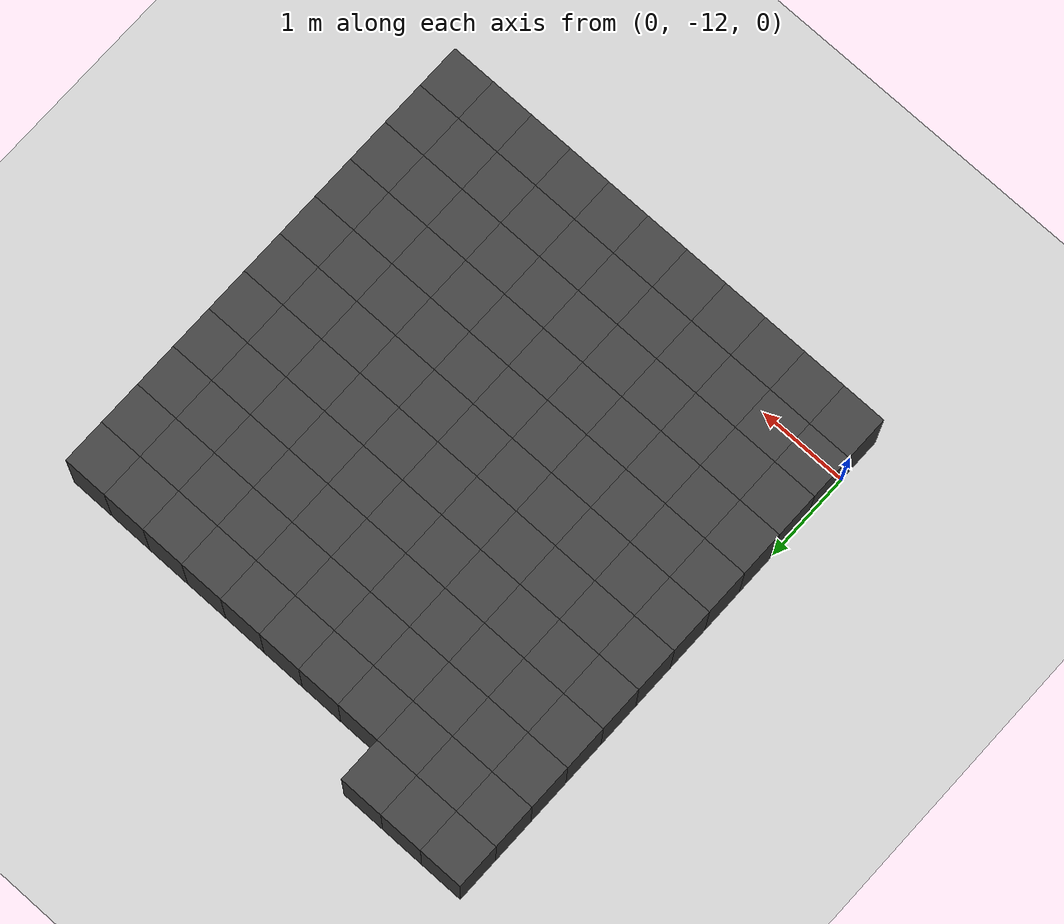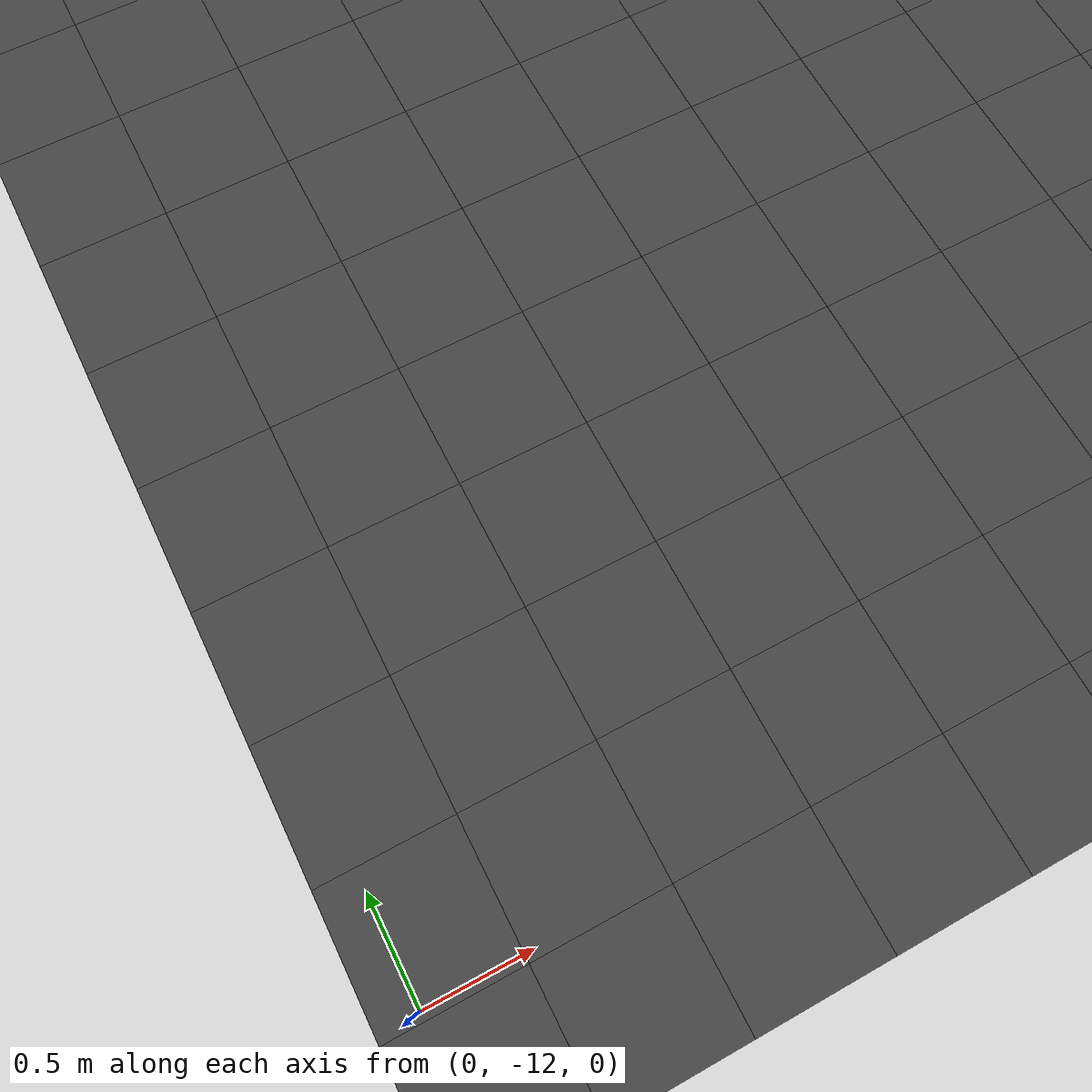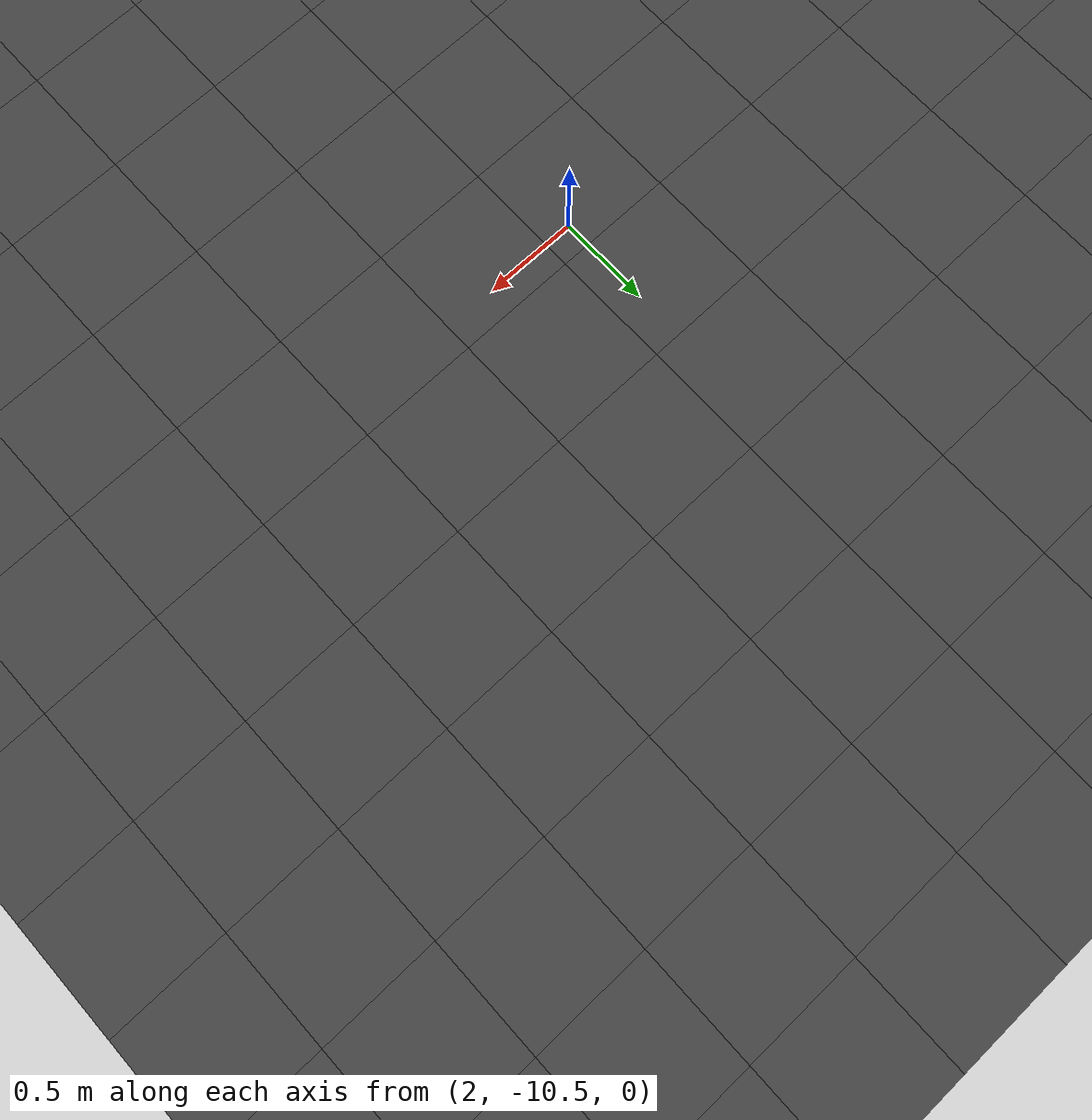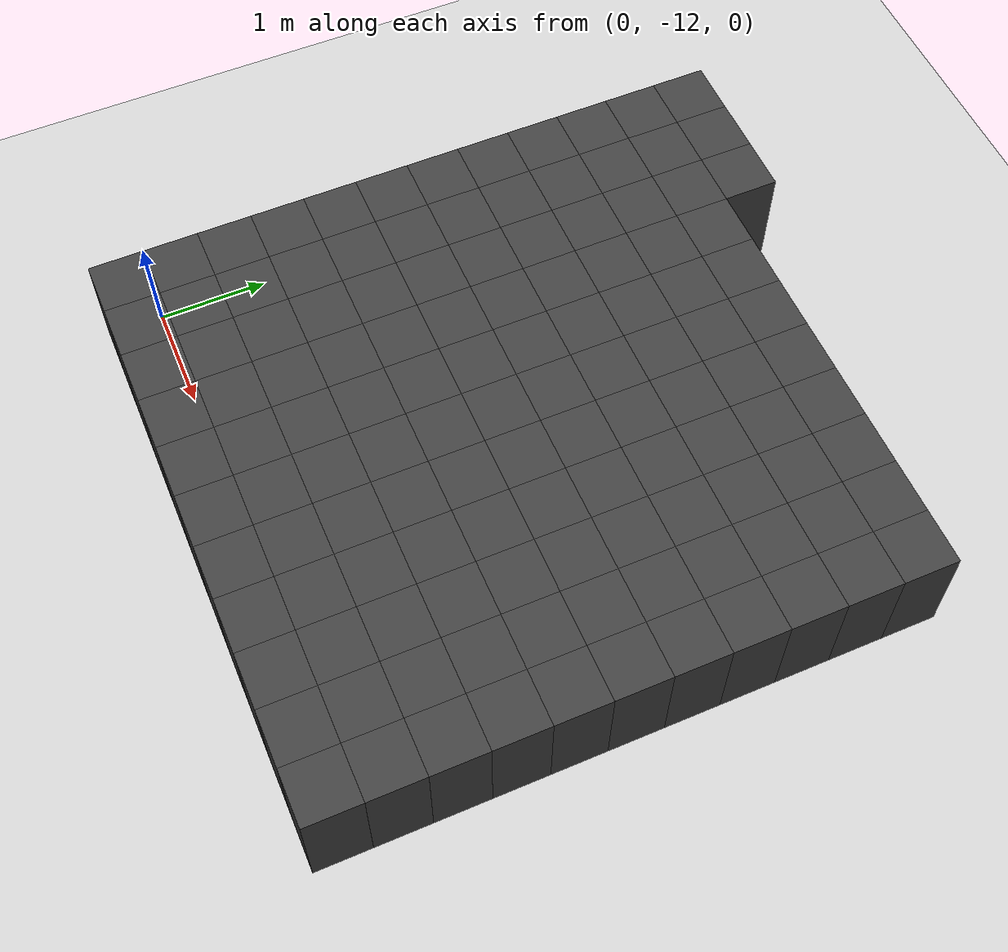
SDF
<sdf version="1.7">
 <world name="map_13820">
  <model name="ground_plane">
   <static>true</static>
   <link name="link">
    <collision name="collision">
     <geometry><plane><normal>0 0 1</normal><size>200 200</size></plane></geometry>
    </collision>
    <visual name="visual">
     <geometry><plane><normal>0 0 1</normal><size>200 200</size></plane></geometry>
     <material><ambient>0.8 0.8 0.8 1</ambient><diffuse>0.8 0.8 0.8 1</diffuse></material>
    </visual>
   </link>
  </model>
  <model name="maze_environment">
   <static>true</static>
   <link name="wall_1316">
    <pose>0.250 -6.750 0.500 0 0 0</pose>
    <collision name="col"><geometry><box><size>0.5 0.5 1.0</size></box></geometry></collision>
    <visual name="vis">
     <geometry><box><size>0.5 0.5 1.0</size></box></geometry>
     <material><ambient>0.15 0.15 0.15 1</ambient><diffuse>0.25 0.25 0.25 1</diffuse></material>
    </visual>
   </link>
   <link name="wall_1317">
    <pose>0.750 -6.750 0.500 0 0 0</pose>
    <collision name="col"><geometry><box><size>0.5 0.5 1.0</size></box></geometry></collision>
    <visual name="vis">
     <geometry><box><size>0.5 0.5 1.0</size></box></geometry>
     <material><ambient>0.15 0.15 0.15 1</ambient><diffuse>0.25 0.25 0.25 1</diffuse></material>
    </visual>
   </link>
   <link name="wall_1318">
    <pose>1.250 -6.750 0.500 0 0 0</pose>
    <collision name="col"><geometry><box><size>0.5 0.5 1.0</size></box></geometry></collision>
    <visual name="vis">
     <geometry><box><size>0.5 0.5 1.0</size></box></geometry>
     <material><ambient>0.15 0.15 0.15 1</ambient><diffuse>0.25 0.25 0.25 1</diffuse></material>
    </visual>
   </link>
   <link name="wall_1358">
    <pose>0.250 -7.250 0.500 0 0 0</pose>
    <collision name="col"><geometry><box><size>0.5 0.5 1.0</size></box></geometry></collision>
    <visual name="vis">
     <geometry><box><size>0.5 0.5 1.0</size></box></geometry>
     <material><ambient>0.15 0.15 0.15 1</ambient><diffuse>0.25 0.25 0.25 1</diffuse></material>
    </visual>
   </link>
   <link name="wall_1359">
    <pose>0.750 -7.250 0.500 0 0 0</pose>
    <collision name="col"><geometry><box><size>0.5 0.5 1.0</size></box></geometry></collision>
    <visual name="vis">
     <geometry><box><size>0.5 0.5 1.0</size></box></geometry>
     <material><ambient>0.15 0.15 0.15 1</ambient><diffuse>0.25 0.25 0.25 1</diffuse></material>
    </visual>
   </link>
   <link name="wall_1360">
    <pose>1.250 -7.250 0.500 0 0 0</pose>
    <collision name="col"><geometry><box><size>0.5 0.5 1.0</size></box></geometry></collision>
    <visual name="vis">
     <geometry><box><size>0.5 0.5 1.0</size></box></geometry>
     <material><ambient>0.15 0.15 0.15 1</ambient><diffuse>0.25 0.25 0.25 1</diffuse></material>
    </visual>
   </link>
   <link name="wall_1361">
    <pose>1.750 -7.250 0.500 0 0 0</pose>
    <collision name="col"><geometry><box><size>0.5 0.5 1.0</size></box></geometry></collision>
    <visual name="vis">
     <geometry><box><size>0.5 0.5 1.0</size></box></geometry>
     <material><ambient>0.15 0.15 0.15 1</ambient><diffuse>0.25 0.25 0.25 1</diffuse></material>
    </visual>
   </link>
   <link name="wall_1362">
    <pose>2.250 -7.250 0.500 0 0 0</pose>
    <collision name="col"><geometry><box><size>0.5 0.5 1.0</size></box></geometry></collision>
    <visual name="vis">
     <geometry><box><size>0.5 0.5 1.0</size></box></geometry>
     <material><ambient>0.15 0.15 0.15 1</ambient><diffuse>0.25 0.25 0.25 1</diffuse></material>
    </visual>
   </link>
   <link name="wall_1363">
    <pose>2.750 -7.250 0.500 0 0 0</pose>
    <collision name="col"><geometry><box><size>0.5 0.5 1.0</size></box></geometry></collision>
    <visual name="vis">
     <geometry><box><size>0.5 0.5 1.0</size></box></geometry>
     <material><ambient>0.15 0.15 0.15 1</ambient><diffuse>0.25 0.25 0.25 1</diffuse></material>
    </visual>
   </link>
   <link name="wall_1364">
    <pose>3.250 -7.250 0.500 0 0 0</pose>
    <collision name="col"><geometry><box><size>0.5 0.5 1.0</size></box></geometry></collision>
    <visual name="vis">
     <geometry><box><size>0.5 0.5 1.0</size></box></geometry>
     <material><ambient>0.15 0.15 0.15 1</ambient><diffuse>0.25 0.25 0.25 1</diffuse></material>
    </visual>
   </link>
   <link name="wall_1365">
    <pose>3.750 -7.250 0.500 0 0 0</pose>
    <collision name="col"><geometry><box><size>0.5 0.5 1.0</size></box></geometry></collision>
    <visual name="vis">
     <geometry><box><size>0.5 0.5 1.0</size></box></geometry>
     <material><ambient>0.15 0.15 0.15 1</ambient><diffuse>0.25 0.25 0.25 1</diffuse></material>
    </visual>
   </link>
   <link name="wall_1366">
    <pose>4.250 -7.250 0.500 0 0 0</pose>
    <collision name="col"><geometry><box><size>0.5 0.5 1.0</size></box></geometry></collision>
    <visual name="vis">
     <geometry><box><size>0.5 0.5 1.0</size></box></geometry>
     <material><ambient>0.15 0.15 0.15 1</ambient><diffuse>0.25 0.25 0.25 1</diffuse></material>
    </visual>
   </link>
   <link name="wall_1367">
    <pose>4.750 -7.250 0.500 0 0 0</pose>
    <collision name="col"><geometry><box><size>0.5 0.5 1.0</size></box></geometry></collision>
    <visual name="vis">
     <geometry><box><size>0.5 0.5 1.0</size></box></geometry>
     <material><ambient>0.15 0.15 0.15 1</ambient><diffuse>0.25 0.25 0.25 1</diffuse></material>
    </visual>
   </link>
   <link name="wall_1368">
    <pose>5.250 -7.250 0.500 0 0 0</pose>
    <collision name="col"><geometry><box><size>0.5 0.5 1.0</size></box></geometry></collision>
    <visual name="vis">
     <geometry><box><size>0.5 0.5 1.0</size></box></geometry>
     <material><ambient>0.15 0.15 0.15 1</ambient><diffuse>0.25 0.25 0.25 1</diffuse></material>
    </visual>
   </link>
   <link name="wall_1407">
    <pose>0.250 -7.750 0.500 0 0 0</pose>
    <collision name="col"><geometry><box><size>0.5 0.5 1.0</size></box></geometry></collision>
    <visual name="vis">
     <geometry><box><size>0.5 0.5 1.0</size></box></geometry>
     <material><ambient>0.15 0.15 0.15 1</ambient><diffuse>0.25 0.25 0.25 1</diffuse></material>
    </visual>
   </link>
   <link name="wall_1408">
    <pose>0.750 -7.750 0.500 0 0 0</pose>
    <collision name="col"><geometry><box><size>0.5 0.5 1.0</size></box></geometry></collision>
    <visual name="vis">
     <geometry><box><size>0.5 0.5 1.0</size></box></geometry>
     <material><ambient>0.15 0.15 0.15 1</ambient><diffuse>0.25 0.25 0.25 1</diffuse></material>
    </visual>
   </link>
   <link name="wall_1409">
    <pose>1.250 -7.750 0.500 0 0 0</pose>
    <collision name="col"><geometry><box><size>0.5 0.5 1.0</size></box></geometry></collision>
    <visual name="vis">
     <geometry><box><size>0.5 0.5 1.0</size></box></geometry>
     <material><ambient>0.15 0.15 0.15 1</ambient><diffuse>0.25 0.25 0.25 1</diffuse></material>
    </visual>
   </link>
   <link name="wall_1410">
    <pose>1.750 -7.750 0.500 0 0 0</pose>
    <collision name="col"><geometry><box><size>0.5 0.5 1.0</size></box></geometry></collision>
    <visual name="vis">
     <geometry><box><size>0.5 0.5 1.0</size></box></geometry>
     <material><ambient>0.15 0.15 0.15 1</ambient><diffuse>0.25 0.25 0.25 1</diffuse></material>
    </visual>
   </link>
   <link name="wall_1411">
    <pose>2.250 -7.750 0.500 0 0 0</pose>
    <collision name="col"><geometry><box><size>0.5 0.5 1.0</size></box></geometry></collision>
    <visual name="vis">
     <geometry><box><size>0.5 0.5 1.0</size></box></geometry>
     <material><ambient>0.15 0.15 0.15 1</ambient><diffuse>0.25 0.25 0.25 1</diffuse></material>
    </visual>
   </link>
   <link name="wall_1412">
    <pose>2.750 -7.750 0.500 0 0 0</pose>
    <collision name="col"><geometry><box><size>0.5 0.5 1.0</size></box></geometry></collision>
    <visual name="vis">
     <geometry><box><size>0.5 0.5 1.0</size></box></geometry>
     <material><ambient>0.15 0.15 0.15 1</ambient><diffuse>0.25 0.25 0.25 1</diffuse></material>
    </visual>
   </link>
   <link name="wall_1413">
    <pose>3.250 -7.750 0.500 0 0 0</pose>
    <collision name="col"><geometry><box><size>0.5 0.5 1.0</size></box></geometry></collision>
    <visual name="vis">
     <geometry><box><size>0.5 0.5 1.0</size></box></geometry>
     <material><ambient>0.15 0.15 0.15 1</ambient><diffuse>0.25 0.25 0.25 1</diffuse></material>
    </visual>
   </link>
   <link name="wall_1414">
    <pose>3.750 -7.750 0.500 0 0 0</pose>
    <collision name="col"><geometry><box><size>0.5 0.5 1.0</size></box></geometry></collision>
    <visual name="vis">
     <geometry><box><size>0.5 0.5 1.0</size></box></geometry>
     <material><ambient>0.15 0.15 0.15 1</ambient><diffuse>0.25 0.25 0.25 1</diffuse></material>
    </visual>
   </link>
   <link name="wall_1415">
    <pose>4.250 -7.750 0.500 0 0 0</pose>
    <collision name="col"><geometry><box><size>0.5 0.5 1.0</size></box></geometry></collision>
    <visual name="vis">
     <geometry><box><size>0.5 0.5 1.0</size></box></geometry>
     <material><ambient>0.15 0.15 0.15 1</ambient><diffuse>0.25 0.25 0.25 1</diffuse></material>
    </visual>
   </link>
   <link name="wall_1416">
    <pose>4.750 -7.750 0.500 0 0 0</pose>
    <collision name="col"><geometry><box><size>0.5 0.5 1.0</size></box></geometry></collision>
    <visual name="vis">
     <geometry><box><size>0.5 0.5 1.0</size></box></geometry>
     <material><ambient>0.15 0.15 0.15 1</ambient><diffuse>0.25 0.25 0.25 1</diffuse></material>
    </visual>
   </link>
   <link name="wall_1417">
    <pose>5.250 -7.750 0.500 0 0 0</pose>
    <collision name="col"><geometry><box><size>0.5 0.5 1.0</size></box></geometry></collision>
    <visual name="vis">
     <geometry><box><size>0.5 0.5 1.0</size></box></geometry>
     <material><ambient>0.15 0.15 0.15 1</ambient><diffuse>0.25 0.25 0.25 1</diffuse></material>
    </visual>
   </link>
   <link name="wall_1456">
    <pose>0.250 -8.250 0.500 0 0 0</pose>
    <collision name="col"><geometry><box><size>0.5 0.5 1.0</size></box></geometry></collision>
    <visual name="vis">
     <geometry><box><size>0.5 0.5 1.0</size></box></geometry>
     <material><ambient>0.15 0.15 0.15 1</ambient><diffuse>0.25 0.25 0.25 1</diffuse></material>
    </visual>
   </link>
   <link name="wall_1457">
    <pose>0.750 -8.250 0.500 0 0 0</pose>
    <collision name="col"><geometry><box><size>0.5 0.5 1.0</size></box></geometry></collision>
    <visual name="vis">
     <geometry><box><size>0.5 0.5 1.0</size></box></geometry>
     <material><ambient>0.15 0.15 0.15 1</ambient><diffuse>0.25 0.25 0.25 1</diffuse></material>
    </visual>
   </link>
   <link name="wall_1458">
    <pose>1.250 -8.250 0.500 0 0 0</pose>
    <collision name="col"><geometry><box><size>0.5 0.5 1.0</size></box></geometry></collision>
    <visual name="vis">
     <geometry><box><size>0.5 0.5 1.0</size></box></geometry>
     <material><ambient>0.15 0.15 0.15 1</ambient><diffuse>0.25 0.25 0.25 1</diffuse></material>
    </visual>
   </link>
   <link name="wall_1459">
    <pose>1.750 -8.250 0.500 0 0 0</pose>
    <collision name="col"><geometry><box><size>0.5 0.5 1.0</size></box></geometry></collision>
    <visual name="vis">
     <geometry><box><size>0.5 0.5 1.0</size></box></geometry>
     <material><ambient>0.15 0.15 0.15 1</ambient><diffuse>0.25 0.25 0.25 1</diffuse></material>
    </visual>
   </link>
   <link name="wall_1460">
    <pose>2.250 -8.250 0.500 0 0 0</pose>
    <collision name="col"><geometry><box><size>0.5 0.5 1.0</size></box></geometry></collision>
    <visual name="vis">
     <geometry><box><size>0.5 0.5 1.0</size></box></geometry>
     <material><ambient>0.15 0.15 0.15 1</ambient><diffuse>0.25 0.25 0.25 1</diffuse></material>
    </visual>
   </link>
   <link name="wall_1461">
    <pose>2.750 -8.250 0.500 0 0 0</pose>
    <collision name="col"><geometry><box><size>0.5 0.5 1.0</size></box></geometry></collision>
    <visual name="vis">
     <geometry><box><size>0.5 0.5 1.0</size></box></geometry>
     <material><ambient>0.15 0.15 0.15 1</ambient><diffuse>0.25 0.25 0.25 1</diffuse></material>
    </visual>
   </link>
   <link name="wall_1462">
    <pose>3.250 -8.250 0.500 0 0 0</pose>
    <collision name="col"><geometry><box><size>0.5 0.5 1.0</size></box></geometry></collision>
    <visual name="vis">
     <geometry><box><size>0.5 0.5 1.0</size></box></geometry>
     <material><ambient>0.15 0.15 0.15 1</ambient><diffuse>0.25 0.25 0.25 1</diffuse></material>
    </visual>
   </link>
   <link name="wall_1463">
    <pose>3.750 -8.250 0.500 0 0 0</pose>
    <collision name="col"><geometry><box><size>0.5 0.5 1.0</size></box></geometry></collision>
    <visual name="vis">
     <geometry><box><size>0.5 0.5 1.0</size></box></geometry>
     <material><ambient>0.15 0.15 0.15 1</ambient><diffuse>0.25 0.25 0.25 1</diffuse></material>
    </visual>
   </link>
   <link name="wall_1464">
    <pose>4.250 -8.250 0.500 0 0 0</pose>
    <collision name="col"><geometry><box><size>0.5 0.5 1.0</size></box></geometry></collision>
    <visual name="vis">
     <geometry><box><size>0.5 0.5 1.0</size></box></geometry>
     <material><ambient>0.15 0.15 0.15 1</ambient><diffuse>0.25 0.25 0.25 1</diffuse></material>
    </visual>
   </link>
   <link name="wall_1465">
    <pose>4.750 -8.250 0.500 0 0 0</pose>
    <collision name="col"><geometry><box><size>0.5 0.5 1.0</size></box></geometry></collision>
    <visual name="vis">
     <geometry><box><size>0.5 0.5 1.0</size></box></geometry>
     <material><ambient>0.15 0.15 0.15 1</ambient><diffuse>0.25 0.25 0.25 1</diffuse></material>
    </visual>
   </link>
   <link name="wall_1466">
    <pose>5.250 -8.250 0.500 0 0 0</pose>
    <collision name="col"><geometry><box><size>0.5 0.5 1.0</size></box></geometry></collision>
    <visual name="vis">
     <geometry><box><size>0.5 0.5 1.0</size></box></geometry>
     <material><ambient>0.15 0.15 0.15 1</ambient><diffuse>0.25 0.25 0.25 1</diffuse></material>
    </visual>
   </link>
   <link name="wall_1505">
    <pose>0.250 -8.750 0.500 0 0 0</pose>
    <collision name="col"><geometry><box><size>0.5 0.5 1.0</size></box></geometry></collision>
    <visual name="vis">
     <geometry><box><size>0.5 0.5 1.0</size></box></geometry>
     <material><ambient>0.15 0.15 0.15 1</ambient><diffuse>0.25 0.25 0.25 1</diffuse></material>
    </visual>
   </link>
   <link name="wall_1506">
    <pose>0.750 -8.750 0.500 0 0 0</pose>
    <collision name="col"><geometry><box><size>0.5 0.5 1.0</size></box></geometry></collision>
    <visual name="vis">
     <geometry><box><size>0.5 0.5 1.0</size></box></geometry>
     <material><ambient>0.15 0.15 0.15 1</ambient><diffuse>0.25 0.25 0.25 1</diffuse></material>
    </visual>
   </link>
   <link name="wall_1507">
    <pose>1.250 -8.750 0.500 0 0 0</pose>
    <collision name="col"><geometry><box><size>0.5 0.5 1.0</size></box></geometry></collision>
    <visual name="vis">
     <geometry><box><size>0.5 0.5 1.0</size></box></geometry>
     <material><ambient>0.15 0.15 0.15 1</ambient><diffuse>0.25 0.25 0.25 1</diffuse></material>
    </visual>
   </link>
   <link name="wall_1508">
    <pose>1.750 -8.750 0.500 0 0 0</pose>
    <collision name="col"><geometry><box><size>0.5 0.5 1.0</size></box></geometry></collision>
    <visual name="vis">
     <geometry><box><size>0.5 0.5 1.0</size></box></geometry>
     <material><ambient>0.15 0.15 0.15 1</ambient><diffuse>0.25 0.25 0.25 1</diffuse></material>
    </visual>
   </link>
   <link name="wall_1509">
    <pose>2.250 -8.750 0.500 0 0 0</pose>
    <collision name="col"><geometry><box><size>0.5 0.5 1.0</size></box></geometry></collision>
    <visual name="vis">
     <geometry><box><size>0.5 0.5 1.0</size></box></geometry>
     <material><ambient>0.15 0.15 0.15 1</ambient><diffuse>0.25 0.25 0.25 1</diffuse></material>
    </visual>
   </link>
   <link name="wall_1510">
    <pose>2.750 -8.750 0.500 0 0 0</pose>
    <collision name="col"><geometry><box><size>0.5 0.5 1.0</size></box></geometry></collision>
    <visual name="vis">
     <geometry><box><size>0.5 0.5 1.0</size></box></geometry>
     <material><ambient>0.15 0.15 0.15 1</ambient><diffuse>0.25 0.25 0.25 1</diffuse></material>
    </visual>
   </link>
   <link name="wall_1511">
    <pose>3.250 -8.750 0.500 0 0 0</pose>
    <collision name="col"><geometry><box><size>0.5 0.5 1.0</size></box></geometry></collision>
    <visual name="vis">
     <geometry><box><size>0.5 0.5 1.0</size></box></geometry>
     <material><ambient>0.15 0.15 0.15 1</ambient><diffuse>0.25 0.25 0.25 1</diffuse></material>
    </visual>
   </link>
   <link name="wall_1512">
    <pose>3.750 -8.750 0.500 0 0 0</pose>
    <collision name="col"><geometry><box><size>0.5 0.5 1.0</size></box></geometry></collision>
    <visual name="vis">
     <geometry><box><size>0.5 0.5 1.0</size></box></geometry>
     <material><ambient>0.15 0.15 0.15 1</ambient><diffuse>0.25 0.25 0.25 1</diffuse></material>
    </visual>
   </link>
   <link name="wall_1513">
    <pose>4.250 -8.750 0.500 0 0 0</pose>
    <collision name="col"><geometry><box><size>0.5 0.5 1.0</size></box></geometry></collision>
    <visual name="vis">
     <geometry><box><size>0.5 0.5 1.0</size></box></geometry>
     <material><ambient>0.15 0.15 0.15 1</ambient><diffuse>0.25 0.25 0.25 1</diffuse></material>
    </visual>
   </link>
   <link name="wall_1514">
    <pose>4.750 -8.750 0.500 0 0 0</pose>
    <collision name="col"><geometry><box><size>0.5 0.5 1.0</size></box></geometry></collision>
    <visual name="vis">
     <geometry><box><size>0.5 0.5 1.0</size></box></geometry>
     <material><ambient>0.15 0.15 0.15 1</ambient><diffuse>0.25 0.25 0.25 1</diffuse></material>
    </visual>
   </link>
   <link name="wall_1515">
    <pose>5.250 -8.750 0.500 0 0 0</pose>
    <collision name="col"><geometry><box><size>0.5 0.5 1.0</size></box></geometry></collision>
    <visual name="vis">
     <geometry><box><size>0.5 0.5 1.0</size></box></geometry>
     <material><ambient>0.15 0.15 0.15 1</ambient><diffuse>0.25 0.25 0.25 1</diffuse></material>
    </visual>
   </link>
   <link name="wall_1554">
    <pose>0.250 -9.250 0.500 0 0 0</pose>
    <collision name="col"><geometry><box><size>0.5 0.5 1.0</size></box></geometry></collision>
    <visual name="vis">
     <geometry><box><size>0.5 0.5 1.0</size></box></geometry>
     <material><ambient>0.15 0.15 0.15 1</ambient><diffuse>0.25 0.25 0.25 1</diffuse></material>
    </visual>
   </link>
   <link name="wall_1555">
    <pose>0.750 -9.250 0.500 0 0 0</pose>
    <collision name="col"><geometry><box><size>0.5 0.5 1.0</size></box></geometry></collision>
    <visual name="vis">
     <geometry><box><size>0.5 0.5 1.0</size></box></geometry>
     <material><ambient>0.15 0.15 0.15 1</ambient><diffuse>0.25 0.25 0.25 1</diffuse></material>
    </visual>
   </link>
   <link name="wall_1556">
    <pose>1.250 -9.250 0.500 0 0 0</pose>
    <collision name="col"><geometry><box><size>0.5 0.5 1.0</size></box></geometry></collision>
    <visual name="vis">
     <geometry><box><size>0.5 0.5 1.0</size></box></geometry>
     <material><ambient>0.15 0.15 0.15 1</ambient><diffuse>0.25 0.25 0.25 1</diffuse></material>
    </visual>
   </link>
   <link name="wall_1557">
    <pose>1.750 -9.250 0.500 0 0 0</pose>
    <collision name="col"><geometry><box><size>0.5 0.5 1.0</size></box></geometry></collision>
    <visual name="vis">
     <geometry><box><size>0.5 0.5 1.0</size></box></geometry>
     <material><ambient>0.15 0.15 0.15 1</ambient><diffuse>0.25 0.25 0.25 1</diffuse></material>
    </visual>
   </link>
   <link name="wall_1558">
    <pose>2.250 -9.250 0.500 0 0 0</pose>
    <collision name="col"><geometry><box><size>0.5 0.5 1.0</size></box></geometry></collision>
    <visual name="vis">
     <geometry><box><size>0.5 0.5 1.0</size></box></geometry>
     <material><ambient>0.15 0.15 0.15 1</ambient><diffuse>0.25 0.25 0.25 1</diffuse></material>
    </visual>
   </link>
   <link name="wall_1559">
    <pose>2.750 -9.250 0.500 0 0 0</pose>
    <collision name="col"><geometry><box><size>0.5 0.5 1.0</size></box></geometry></collision>
    <visual name="vis">
     <geometry><box><size>0.5 0.5 1.0</size></box></geometry>
     <material><ambient>0.15 0.15 0.15 1</ambient><diffuse>0.25 0.25 0.25 1</diffuse></material>
    </visual>
   </link>
   <link name="wall_1560">
    <pose>3.250 -9.250 0.500 0 0 0</pose>
    <collision name="col"><geometry><box><size>0.5 0.5 1.0</size></box></geometry></collision>
    <visual name="vis">
     <geometry><box><size>0.5 0.5 1.0</size></box></geometry>
     <material><ambient>0.15 0.15 0.15 1</ambient><diffuse>0.25 0.25 0.25 1</diffuse></material>
    </visual>
   </link>
   <link name="wall_1561">
    <pose>3.750 -9.250 0.500 0 0 0</pose>
    <collision name="col"><geometry><box><size>0.5 0.5 1.0</size></box></geometry></collision>
    <visual name="vis">
     <geometry><box><size>0.5 0.5 1.0</size></box></geometry>
     <material><ambient>0.15 0.15 0.15 1</ambient><diffuse>0.25 0.25 0.25 1</diffuse></material>
    </visual>
   </link>
   <link name="wall_1562">
    <pose>4.250 -9.250 0.500 0 0 0</pose>
    <collision name="col"><geometry><box><size>0.5 0.5 1.0</size></box></geometry></collision>
    <visual name="vis">
     <geometry><box><size>0.5 0.5 1.0</size></box></geometry>
     <material><ambient>0.15 0.15 0.15 1</ambient><diffuse>0.25 0.25 0.25 1</diffuse></material>
    </visual>
   </link>
   <link name="wall_1563">
    <pose>4.750 -9.250 0.500 0 0 0</pose>
    <collision name="col"><geometry><box><size>0.5 0.5 1.0</size></box></geometry></collision>
    <visual name="vis">
     <geometry><box><size>0.5 0.5 1.0</size></box></geometry>
     <material><ambient>0.15 0.15 0.15 1</ambient><diffuse>0.25 0.25 0.25 1</diffuse></material>
    </visual>
   </link>
   <link name="wall_1564">
    <pose>5.250 -9.250 0.500 0 0 0</pose>
    <collision name="col"><geometry><box><size>0.5 0.5 1.0</size></box></geometry></collision>
    <visual name="vis">
     <geometry><box><size>0.5 0.5 1.0</size></box></geometry>
     <material><ambient>0.15 0.15 0.15 1</ambient><diffuse>0.25 0.25 0.25 1</diffuse></material>
    </visual>
   </link>
   <link name="wall_1603">
    <pose>0.250 -9.750 0.500 0 0 0</pose>
    <collision name="col"><geometry><box><size>0.5 0.5 1.0</size></box></geometry></collision>
    <visual name="vis">
     <geometry><box><size>0.5 0.5 1.0</size></box></geometry>
     <material><ambient>0.15 0.15 0.15 1</ambient><diffuse>0.25 0.25 0.25 1</diffuse></material>
    </visual>
   </link>
   <link name="wall_1604">
    <pose>0.750 -9.750 0.500 0 0 0</pose>
    <collision name="col"><geometry><box><size>0.5 0.5 1.0</size></box></geometry></collision>
    <visual name="vis">
     <geometry><box><size>0.5 0.5 1.0</size></box></geometry>
     <material><ambient>0.15 0.15 0.15 1</ambient><diffuse>0.25 0.25 0.25 1</diffuse></material>
    </visual>
   </link>
   <link name="wall_1605">
    <pose>1.250 -9.750 0.500 0 0 0</pose>
    <collision name="col"><geometry><box><size>0.5 0.5 1.0</size></box></geometry></collision>
    <visual name="vis">
     <geometry><box><size>0.5 0.5 1.0</size></box></geometry>
     <material><ambient>0.15 0.15 0.15 1</ambient><diffuse>0.25 0.25 0.25 1</diffuse></material>
    </visual>
   </link>
   <link name="wall_1606">
    <pose>1.750 -9.750 0.500 0 0 0</pose>
    <collision name="col"><geometry><box><size>0.5 0.5 1.0</size></box></geometry></collision>
    <visual name="vis">
     <geometry><box><size>0.5 0.5 1.0</size></box></geometry>
     <material><ambient>0.15 0.15 0.15 1</ambient><diffuse>0.25 0.25 0.25 1</diffuse></material>
    </visual>
   </link>
   <link name="wall_1607">
    <pose>2.250 -9.750 0.500 0 0 0</pose>
    <collision name="col"><geometry><box><size>0.5 0.5 1.0</size></box></geometry></collision>
    <visual name="vis">
     <geometry><box><size>0.5 0.5 1.0</size></box></geometry>
     <material><ambient>0.15 0.15 0.15 1</ambient><diffuse>0.25 0.25 0.25 1</diffuse></material>
    </visual>
   </link>
   <link name="wall_1608">
    <pose>2.750 -9.750 0.500 0 0 0</pose>
    <collision name="col"><geometry><box><size>0.5 0.5 1.0</size></box></geometry></collision>
    <visual name="vis">
     <geometry><box><size>0.5 0.5 1.0</size></box></geometry>
     <material><ambient>0.15 0.15 0.15 1</ambient><diffuse>0.25 0.25 0.25 1</diffuse></material>
    </visual>
   </link>
   <link name="wall_1609">
    <pose>3.250 -9.750 0.500 0 0 0</pose>
    <collision name="col"><geometry><box><size>0.5 0.5 1.0</size></box></geometry></collision>
    <visual name="vis">
     <geometry><box><size>0.5 0.5 1.0</size></box></geometry>
     <material><ambient>0.15 0.15 0.15 1</ambient><diffuse>0.25 0.25 0.25 1</diffuse></material>
    </visual>
   </link>
   <link name="wall_1610">
    <pose>3.750 -9.750 0.500 0 0 0</pose>
    <collision name="col"><geometry><box><size>0.5 0.5 1.0</size></box></geometry></collision>
    <visual name="vis">
     <geometry><box><size>0.5 0.5 1.0</size></box></geometry>
     <material><ambient>0.15 0.15 0.15 1</ambient><diffuse>0.25 0.25 0.25 1</diffuse></material>
    </visual>
   </link>
   <link name="wall_1611">
    <pose>4.250 -9.750 0.500 0 0 0</pose>
    <collision name="col"><geometry><box><size>0.5 0.5 1.0</size></box></geometry></collision>
    <visual name="vis">
     <geometry><box><size>0.5 0.5 1.0</size></box></geometry>
     <material><ambient>0.15 0.15 0.15 1</ambient><diffuse>0.25 0.25 0.25 1</diffuse></material>
    </visual>
   </link>
   <link name="wall_1612">
    <pose>4.750 -9.750 0.500 0 0 0</pose>
    <collision name="col"><geometry><box><size>0.5 0.5 1.0</size></box></geometry></collision>
    <visual name="vis">
     <geometry><box><size>0.5 0.5 1.0</size></box></geometry>
     <material><ambient>0.15 0.15 0.15 1</ambient><diffuse>0.25 0.25 0.25 1</diffuse></material>
    </visual>
   </link>
   <link name="wall_1613">
    <pose>5.250 -9.750 0.500 0 0 0</pose>
    <collision name="col"><geometry><box><size>0.5 0.5 1.0</size></box></geometry></collision>
    <visual name="vis">
     <geometry><box><size>0.5 0.5 1.0</size></box></geometry>
     <material><ambient>0.15 0.15 0.15 1</ambient><diffuse>0.25 0.25 0.25 1</diffuse></material>
    </visual>
   </link>
   <link name="wall_1652">
    <pose>0.250 -10.250 0.500 0 0 0</pose>
    <collision name="col"><geometry><box><size>0.5 0.5 1.0</size></box></geometry></collision>
    <visual name="vis">
     <geometry><box><size>0.5 0.5 1.0</size></box></geometry>
     <material><ambient>0.15 0.15 0.15 1</ambient><diffuse>0.25 0.25 0.25 1</diffuse></material>
    </visual>
   </link>
   <link name="wall_1653">
    <pose>0.750 -10.250 0.500 0 0 0</pose>
    <collision name="col"><geometry><box><size>0.5 0.5 1.0</size></box></geometry></collision>
    <visual name="vis">
     <geometry><box><size>0.5 0.5 1.0</size></box></geometry>
     <material><ambient>0.15 0.15 0.15 1</ambient><diffuse>0.25 0.25 0.25 1</diffuse></material>
    </visual>
   </link>
   <link name="wall_1654">
    <pose>1.250 -10.250 0.500 0 0 0</pose>
    <collision name="col"><geometry><box><size>0.5 0.5 1.0</size></box></geometry></collision>
    <visual name="vis">
     <geometry><box><size>0.5 0.5 1.0</size></box></geometry>
     <material><ambient>0.15 0.15 0.15 1</ambient><diffuse>0.25 0.25 0.25 1</diffuse></material>
    </visual>
   </link>
   <link name="wall_1655">
    <pose>1.750 -10.250 0.500 0 0 0</pose>
    <collision name="col"><geometry><box><size>0.5 0.5 1.0</size></box></geometry></collision>
    <visual name="vis">
     <geometry><box><size>0.5 0.5 1.0</size></box></geometry>
     <material><ambient>0.15 0.15 0.15 1</ambient><diffuse>0.25 0.25 0.25 1</diffuse></material>
    </visual>
   </link>
   <link name="wall_1656">
    <pose>2.250 -10.250 0.500 0 0 0</pose>
    <collision name="col"><geometry><box><size>0.5 0.5 1.0</size></box></geometry></collision>
    <visual name="vis">
     <geometry><box><size>0.5 0.5 1.0</size></box></geometry>
     <material><ambient>0.15 0.15 0.15 1</ambient><diffuse>0.25 0.25 0.25 1</diffuse></material>
    </visual>
   </link>
   <link name="wall_1657">
    <pose>2.750 -10.250 0.500 0 0 0</pose>
    <collision name="col"><geometry><box><size>0.5 0.5 1.0</size></box></geometry></collision>
    <visual name="vis">
     <geometry><box><size>0.5 0.5 1.0</size></box></geometry>
     <material><ambient>0.15 0.15 0.15 1</ambient><diffuse>0.25 0.25 0.25 1</diffuse></material>
    </visual>
   </link>
   <link name="wall_1658">
    <pose>3.250 -10.250 0.500 0 0 0</pose>
    <collision name="col"><geometry><box><size>0.5 0.5 1.0</size></box></geometry></collision>
    <visual name="vis">
     <geometry><box><size>0.5 0.5 1.0</size></box></geometry>
     <material><ambient>0.15 0.15 0.15 1</ambient><diffuse>0.25 0.25 0.25 1</diffuse></material>
    </visual>
   </link>
   <link name="wall_1659">
    <pose>3.750 -10.250 0.500 0 0 0</pose>
    <collision name="col"><geometry><box><size>0.5 0.5 1.0</size></box></geometry></collision>
    <visual name="vis">
     <geometry><box><size>0.5 0.5 1.0</size></box></geometry>
     <material><ambient>0.15 0.15 0.15 1</ambient><diffuse>0.25 0.25 0.25 1</diffuse></material>
    </visual>
   </link>
   <link name="wall_1660">
    <pose>4.250 -10.250 0.500 0 0 0</pose>
    <collision name="col"><geometry><box><size>0.5 0.5 1.0</size></box></geometry></collision>
    <visual name="vis">
     <geometry><box><size>0.5 0.5 1.0</size></box></geometry>
     <material><ambient>0.15 0.15 0.15 1</ambient><diffuse>0.25 0.25 0.25 1</diffuse></material>
    </visual>
   </link>
   <link name="wall_1661">
    <pose>4.750 -10.250 0.500 0 0 0</pose>
    <collision name="col"><geometry><box><size>0.5 0.5 1.0</size></box></geometry></collision>
    <visual name="vis">
     <geometry><box><size>0.5 0.5 1.0</size></box></geometry>
     <material><ambient>0.15 0.15 0.15 1</ambient><diffuse>0.25 0.25 0.25 1</diffuse></material>
    </visual>
   </link>
   <link name="wall_1662">
    <pose>5.250 -10.250 0.500 0 0 0</pose>
    <collision name="col"><geometry><box><size>0.5 0.5 1.0</size></box></geometry></collision>
    <visual name="vis">
     <geometry><box><size>0.5 0.5 1.0</size></box></geometry>
     <material><ambient>0.15 0.15 0.15 1</ambient><diffuse>0.25 0.25 0.25 1</diffuse></material>
    </visual>
   </link>
   <link name="wall_1701">
    <pose>0.250 -10.750 0.500 0 0 0</pose>
    <collision name="col"><geometry><box><size>0.5 0.5 1.0</size></box></geometry></collision>
    <visual name="vis">
     <geometry><box><size>0.5 0.5 1.0</size></box></geometry>
     <material><ambient>0.15 0.15 0.15 1</ambient><diffuse>0.25 0.25 0.25 1</diffuse></material>
    </visual>
   </link>
   <link name="wall_1702">
    <pose>0.750 -10.750 0.500 0 0 0</pose>
    <collision name="col"><geometry><box><size>0.5 0.5 1.0</size></box></geometry></collision>
    <visual name="vis">
     <geometry><box><size>0.5 0.5 1.0</size></box></geometry>
     <material><ambient>0.15 0.15 0.15 1</ambient><diffuse>0.25 0.25 0.25 1</diffuse></material>
    </visual>
   </link>
   <link name="wall_1703">
    <pose>1.250 -10.750 0.500 0 0 0</pose>
    <collision name="col"><geometry><box><size>0.5 0.5 1.0</size></box></geometry></collision>
    <visual name="vis">
     <geometry><box><size>0.5 0.5 1.0</size></box></geometry>
     <material><ambient>0.15 0.15 0.15 1</ambient><diffuse>0.25 0.25 0.25 1</diffuse></material>
    </visual>
   </link>
   <link name="wall_1704">
    <pose>1.750 -10.750 0.500 0 0 0</pose>
    <collision name="col"><geometry><box><size>0.5 0.5 1.0</size></box></geometry></collision>
    <visual name="vis">
     <geometry><box><size>0.5 0.5 1.0</size></box></geometry>
     <material><ambient>0.15 0.15 0.15 1</ambient><diffuse>0.25 0.25 0.25 1</diffuse></material>
    </visual>
   </link>
   <link name="wall_1705">
    <pose>2.250 -10.750 0.500 0 0 0</pose>
    <collision name="col"><geometry><box><size>0.5 0.5 1.0</size></box></geometry></collision>
    <visual name="vis">
     <geometry><box><size>0.5 0.5 1.0</size></box></geometry>
     <material><ambient>0.15 0.15 0.15 1</ambient><diffuse>0.25 0.25 0.25 1</diffuse></material>
    </visual>
   </link>
   <link name="wall_1706">
    <pose>2.750 -10.750 0.500 0 0 0</pose>
    <collision name="col"><geometry><box><size>0.5 0.5 1.0</size></box></geometry></collision>
    <visual name="vis">
     <geometry><box><size>0.5 0.5 1.0</size></box></geometry>
     <material><ambient>0.15 0.15 0.15 1</ambient><diffuse>0.25 0.25 0.25 1</diffuse></material>
    </visual>
   </link>
   <link name="wall_1707">
    <pose>3.250 -10.750 0.500 0 0 0</pose>
    <collision name="col"><geometry><box><size>0.5 0.5 1.0</size></box></geometry></collision>
    <visual name="vis">
     <geometry><box><size>0.5 0.5 1.0</size></box></geometry>
     <material><ambient>0.15 0.15 0.15 1</ambient><diffuse>0.25 0.25 0.25 1</diffuse></material>
    </visual>
   </link>
   <link name="wall_1708">
    <pose>3.750 -10.750 0.500 0 0 0</pose>
    <collision name="col"><geometry><box><size>0.5 0.5 1.0</size></box></geometry></collision>
    <visual name="vis">
     <geometry><box><size>0.5 0.5 1.0</size></box></geometry>
     <material><ambient>0.15 0.15 0.15 1</ambient><diffuse>0.25 0.25 0.25 1</diffuse></material>
    </visual>
   </link>
   <link name="wall_1709">
    <pose>4.250 -10.750 0.500 0 0 0</pose>
    <collision name="col"><geometry><box><size>0.5 0.5 1.0</size></box></geometry></collision>
    <visual name="vis">
     <geometry><box><size>0.5 0.5 1.0</size></box></geometry>
     <material><ambient>0.15 0.15 0.15 1</ambient><diffuse>0.25 0.25 0.25 1</diffuse></material>
    </visual>
   </link>
   <link name="wall_1710">
    <pose>4.750 -10.750 0.500 0 0 0</pose>
    <collision name="col"><geometry><box><size>0.5 0.5 1.0</size></box></geometry></collision>
    <visual name="vis">
     <geometry><box><size>0.5 0.5 1.0</size></box></geometry>
     <material><ambient>0.15 0.15 0.15 1</ambient><diffuse>0.25 0.25 0.25 1</diffuse></material>
    </visual>
   </link>
   <link name="wall_1711">
    <pose>5.250 -10.750 0.500 0 0 0</pose>
    <collision name="col"><geometry><box><size>0.5 0.5 1.0</size></box></geometry></collision>
    <visual name="vis">
     <geometry><box><size>0.5 0.5 1.0</size></box></geometry>
     <material><ambient>0.15 0.15 0.15 1</ambient><diffuse>0.25 0.25 0.25 1</diffuse></material>
    </visual>
   </link>
   <link name="wall_1747">
    <pose>0.250 -11.250 0.500 0 0 0</pose>
    <collision name="col"><geometry><box><size>0.5 0.5 1.0</size></box></geometry></collision>
    <visual name="vis">
     <geometry><box><size>0.5 0.5 1.0</size></box></geometry>
     <material><ambient>0.15 0.15 0.15 1</ambient><diffuse>0.25 0.25 0.25 1</diffuse></material>
    </visual>
   </link>
   <link name="wall_1748">
    <pose>0.750 -11.250 0.500 0 0 0</pose>
    <collision name="col"><geometry><box><size>0.5 0.5 1.0</size></box></geometry></collision>
    <visual name="vis">
     <geometry><box><size>0.5 0.5 1.0</size></box></geometry>
     <material><ambient>0.15 0.15 0.15 1</ambient><diffuse>0.25 0.25 0.25 1</diffuse></material>
    </visual>
   </link>
   <link name="wall_1749">
    <pose>1.250 -11.250 0.500 0 0 0</pose>
    <collision name="col"><geometry><box><size>0.5 0.5 1.0</size></box></geometry></collision>
    <visual name="vis">
     <geometry><box><size>0.5 0.5 1.0</size></box></geometry>
     <material><ambient>0.15 0.15 0.15 1</ambient><diffuse>0.25 0.25 0.25 1</diffuse></material>
    </visual>
   </link>
   <link name="wall_1750">
    <pose>1.750 -11.250 0.500 0 0 0</pose>
    <collision name="col"><geometry><box><size>0.5 0.5 1.0</size></box></geometry></collision>
    <visual name="vis">
     <geometry><box><size>0.5 0.5 1.0</size></box></geometry>
     <material><ambient>0.15 0.15 0.15 1</ambient><diffuse>0.25 0.25 0.25 1</diffuse></material>
    </visual>
   </link>
   <link name="wall_1751">
    <pose>2.250 -11.250 0.500 0 0 0</pose>
    <collision name="col"><geometry><box><size>0.5 0.5 1.0</size></box></geometry></collision>
    <visual name="vis">
     <geometry><box><size>0.5 0.5 1.0</size></box></geometry>
     <material><ambient>0.15 0.15 0.15 1</ambient><diffuse>0.25 0.25 0.25 1</diffuse></material>
    </visual>
   </link>
   <link name="wall_1752">
    <pose>2.750 -11.250 0.500 0 0 0</pose>
    <collision name="col"><geometry><box><size>0.5 0.5 1.0</size></box></geometry></collision>
    <visual name="vis">
     <geometry><box><size>0.5 0.5 1.0</size></box></geometry>
     <material><ambient>0.15 0.15 0.15 1</ambient><diffuse>0.25 0.25 0.25 1</diffuse></material>
    </visual>
   </link>
   <link name="wall_1753">
    <pose>3.250 -11.250 0.500 0 0 0</pose>
    <collision name="col"><geometry><box><size>0.5 0.5 1.0</size></box></geometry></collision>
    <visual name="vis">
     <geometry><box><size>0.5 0.5 1.0</size></box></geometry>
     <material><ambient>0.15 0.15 0.15 1</ambient><diffuse>0.25 0.25 0.25 1</diffuse></material>
    </visual>
   </link>
   <link name="wall_1754">
    <pose>3.750 -11.250 0.500 0 0 0</pose>
    <collision name="col"><geometry><box><size>0.5 0.5 1.0</size></box></geometry></collision>
    <visual name="vis">
     <geometry><box><size>0.5 0.5 1.0</size></box></geometry>
     <material><ambient>0.15 0.15 0.15 1</ambient><diffuse>0.25 0.25 0.25 1</diffuse></material>
    </visual>
   </link>
   <link name="wall_1755">
    <pose>4.250 -11.250 0.500 0 0 0</pose>
    <collision name="col"><geometry><box><size>0.5 0.5 1.0</size></box></geometry></collision>
    <visual name="vis">
     <geometry><box><size>0.5 0.5 1.0</size></box></geometry>
     <material><ambient>0.15 0.15 0.15 1</ambient><diffuse>0.25 0.25 0.25 1</diffuse></material>
    </visual>
   </link>
   <link name="wall_1756">
    <pose>4.750 -11.250 0.500 0 0 0</pose>
    <collision name="col"><geometry><box><size>0.5 0.5 1.0</size></box></geometry></collision>
    <visual name="vis">
     <geometry><box><size>0.5 0.5 1.0</size></box></geometry>
     <material><ambient>0.15 0.15 0.15 1</ambient><diffuse>0.25 0.25 0.25 1</diffuse></material>
    </visual>
   </link>
   <link name="wall_1757">
    <pose>5.250 -11.250 0.500 0 0 0</pose>
    <collision name="col"><geometry><box><size>0.5 0.5 1.0</size></box></geometry></collision>
    <visual name="vis">
     <geometry><box><size>0.5 0.5 1.0</size></box></geometry>
     <material><ambient>0.15 0.15 0.15 1</ambient><diffuse>0.25 0.25 0.25 1</diffuse></material>
    </visual>
   </link>
   <link name="wall_1785">
    <pose>0.250 -11.750 0.500 0 0 0</pose>
    <collision name="col"><geometry><box><size>0.5 0.5 1.0</size></box></geometry></collision>
    <visual name="vis">
     <geometry><box><size>0.5 0.5 1.0</size></box></geometry>
     <material><ambient>0.15 0.15 0.15 1</ambient><diffuse>0.25 0.25 0.25 1</diffuse></material>
    </visual>
   </link>
   <link name="wall_1786">
    <pose>0.750 -11.750 0.500 0 0 0</pose>
    <collision name="col"><geometry><box><size>0.5 0.5 1.0</size></box></geometry></collision>
    <visual name="vis">
     <geometry><box><size>0.5 0.5 1.0</size></box></geometry>
     <material><ambient>0.15 0.15 0.15 1</ambient><diffuse>0.25 0.25 0.25 1</diffuse></material>
    </visual>
   </link>
   <link name="wall_1787">
    <pose>1.250 -11.750 0.500 0 0 0</pose>
    <collision name="col"><geometry><box><size>0.5 0.5 1.0</size></box></geometry></collision>
    <visual name="vis">
     <geometry><box><size>0.5 0.5 1.0</size></box></geometry>
     <material><ambient>0.15 0.15 0.15 1</ambient><diffuse>0.25 0.25 0.25 1</diffuse></material>
    </visual>
   </link>
   <link name="wall_1788">
    <pose>1.750 -11.750 0.500 0 0 0</pose>
    <collision name="col"><geometry><box><size>0.5 0.5 1.0</size></box></geometry></collision>
    <visual name="vis">
     <geometry><box><size>0.5 0.5 1.0</size></box></geometry>
     <material><ambient>0.15 0.15 0.15 1</ambient><diffuse>0.25 0.25 0.25 1</diffuse></material>
    </visual>
   </link>
   <link name="wall_1789">
    <pose>2.250 -11.750 0.500 0 0 0</pose>
    <collision name="col"><geometry><box><size>0.5 0.5 1.0</size></box></geometry></collision>
    <visual name="vis">
     <geometry><box><size>0.5 0.5 1.0</size></box></geometry>
     <material><ambient>0.15 0.15 0.15 1</ambient><diffuse>0.25 0.25 0.25 1</diffuse></material>
    </visual>
   </link>
   <link name="wall_1790">
    <pose>2.750 -11.750 0.500 0 0 0</pose>
    <collision name="col"><geometry><box><size>0.5 0.5 1.0</size></box></geometry></collision>
    <visual name="vis">
     <geometry><box><size>0.5 0.5 1.0</size></box></geometry>
     <material><ambient>0.15 0.15 0.15 1</ambient><diffuse>0.25 0.25 0.25 1</diffuse></material>
    </visual>
   </link>
   <link name="wall_1791">
    <pose>3.250 -11.750 0.500 0 0 0</pose>
    <collision name="col"><geometry><box><size>0.5 0.5 1.0</size></box></geometry></collision>
    <visual name="vis">
     <geometry><box><size>0.5 0.5 1.0</size></box></geometry>
     <material><ambient>0.15 0.15 0.15 1</ambient><diffuse>0.25 0.25 0.25 1</diffuse></material>
    </visual>
   </link>
   <link name="wall_1792">
    <pose>3.750 -11.750 0.500 0 0 0</pose>
    <collision name="col"><geometry><box><size>0.5 0.5 1.0</size></box></geometry></collision>
    <visual name="vis">
     <geometry><box><size>0.5 0.5 1.0</size></box></geometry>
     <material><ambient>0.15 0.15 0.15 1</ambient><diffuse>0.25 0.25 0.25 1</diffuse></material>
    </visual>
   </link>
   <link name="wall_1793">
    <pose>4.250 -11.750 0.500 0 0 0</pose>
    <collision name="col"><geometry><box><size>0.5 0.5 1.0</size></box></geometry></collision>
    <visual name="vis">
     <geometry><box><size>0.5 0.5 1.0</size></box></geometry>
     <material><ambient>0.15 0.15 0.15 1</ambient><diffuse>0.25 0.25 0.25 1</diffuse></material>
    </visual>
   </link>
   <link name="wall_1794">
    <pose>4.750 -11.750 0.500 0 0 0</pose>
    <collision name="col"><geometry><box><size>0.5 0.5 1.0</size></box></geometry></collision>
    <visual name="vis">
     <geometry><box><size>0.5 0.5 1.0</size></box></geometry>
     <material><ambient>0.15 0.15 0.15 1</ambient><diffuse>0.25 0.25 0.25 1</diffuse></material>
    </visual>
   </link>
   <link name="wall_1795">
    <pose>5.250 -11.750 0.500 0 0 0</pose>
    <collision name="col"><geometry><box><size>0.5 0.5 1.0</size></box></geometry></collision>
    <visual name="vis">
     <geometry><box><size>0.5 0.5 1.0</size></box></geometry>
     <material><ambient>0.15 0.15 0.15 1</ambient><diffuse>0.25 0.25 0.25 1</diffuse></material>
    </visual>
   </link>
   <link name="wall_1832">
    <pose>0.250 -12.250 0.500 0 0 0</pose>
    <collision name="col"><geometry><box><size>0.5 0.5 1.0</size></box></geometry></collision>
    <visual name="vis">
     <geometry><box><size>0.5 0.5 1.0</size></box></geometry>
     <material><ambient>0.15 0.15 0.15 1</ambient><diffuse>0.25 0.25 0.25 1</diffuse></material>
    </visual>
   </link>
   <link name="wall_1833">
    <pose>0.750 -12.250 0.500 0 0 0</pose>
    <collision name="col"><geometry><box><size>0.5 0.5 1.0</size></box></geometry></collision>
    <visual name="vis">
     <geometry><box><size>0.5 0.5 1.0</size></box></geometry>
     <material><ambient>0.15 0.15 0.15 1</ambient><diffuse>0.25 0.25 0.25 1</diffuse></material>
    </visual>
   </link>
   <link name="wall_1834">
    <pose>1.250 -12.250 0.500 0 0 0</pose>
    <collision name="col"><geometry><box><size>0.5 0.5 1.0</size></box></geometry></collision>
    <visual name="vis">
     <geometry><box><size>0.5 0.5 1.0</size></box></geometry>
     <material><ambient>0.15 0.15 0.15 1</ambient><diffuse>0.25 0.25 0.25 1</diffuse></material>
    </visual>
   </link>
   <link name="wall_1835">
    <pose>1.750 -12.250 0.500 0 0 0</pose>
    <collision name="col"><geometry><box><size>0.5 0.5 1.0</size></box></geometry></collision>
    <visual name="vis">
     <geometry><box><size>0.5 0.5 1.0</size></box></geometry>
     <material><ambient>0.15 0.15 0.15 1</ambient><diffuse>0.25 0.25 0.25 1</diffuse></material>
    </visual>
   </link>
   <link name="wall_1836">
    <pose>2.250 -12.250 0.500 0 0 0</pose>
    <collision name="col"><geometry><box><size>0.5 0.5 1.0</size></box></geometry></collision>
    <visual name="vis">
     <geometry><box><size>0.5 0.5 1.0</size></box></geometry>
     <material><ambient>0.15 0.15 0.15 1</ambient><diffuse>0.25 0.25 0.25 1</diffuse></material>
    </visual>
   </link>
   <link name="wall_1837">
    <pose>2.750 -12.250 0.500 0 0 0</pose>
    <collision name="col"><geometry><box><size>0.5 0.5 1.0</size></box></geometry></collision>
    <visual name="vis">
     <geometry><box><size>0.5 0.5 1.0</size></box></geometry>
     <material><ambient>0.15 0.15 0.15 1</ambient><diffuse>0.25 0.25 0.25 1</diffuse></material>
    </visual>
   </link>
   <link name="wall_1838">
    <pose>3.250 -12.250 0.500 0 0 0</pose>
    <collision name="col"><geometry><box><size>0.5 0.5 1.0</size></box></geometry></collision>
    <visual name="vis">
     <geometry><box><size>0.5 0.5 1.0</size></box></geometry>
     <material><ambient>0.15 0.15 0.15 1</ambient><diffuse>0.25 0.25 0.25 1</diffuse></material>
    </visual>
   </link>
   <link name="wall_1839">
    <pose>3.750 -12.250 0.500 0 0 0</pose>
    <collision name="col"><geometry><box><size>0.5 0.5 1.0</size></box></geometry></collision>
    <visual name="vis">
     <geometry><box><size>0.5 0.5 1.0</size></box></geometry>
     <material><ambient>0.15 0.15 0.15 1</ambient><diffuse>0.25 0.25 0.25 1</diffuse></material>
    </visual>
   </link>
   <link name="wall_1840">
    <pose>4.250 -12.250 0.500 0 0 0</pose>
    <collision name="col"><geometry><box><size>0.5 0.5 1.0</size></box></geometry></collision>
    <visual name="vis">
     <geometry><box><size>0.5 0.5 1.0</size></box></geometry>
     <material><ambient>0.15 0.15 0.15 1</ambient><diffuse>0.25 0.25 0.25 1</diffuse></material>
    </visual>
   </link>
   <link name="wall_1841">
    <pose>4.750 -12.250 0.500 0 0 0</pose>
    <collision name="col"><geometry><box><size>0.5 0.5 1.0</size></box></geometry></collision>
    <visual name="vis">
     <geometry><box><size>0.5 0.5 1.0</size></box></geometry>
     <material><ambient>0.15 0.15 0.15 1</ambient><diffuse>0.25 0.25 0.25 1</diffuse></material>
    </visual>
   </link>
   <link name="wall_1842">
    <pose>5.250 -12.250 0.500 0 0 0</pose>
    <collision name="col"><geometry><box><size>0.5 0.5 1.0</size></box></geometry></collision>
    <visual name="vis">
     <geometry><box><size>0.5 0.5 1.0</size></box></geometry>
     <material><ambient>0.15 0.15 0.15 1</ambient><diffuse>0.25 0.25 0.25 1</diffuse></material>
    </visual>
   </link>
  </model>
 </world>
</sdf>
